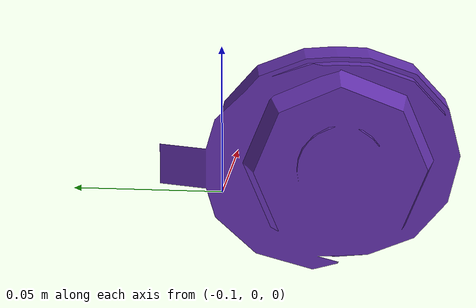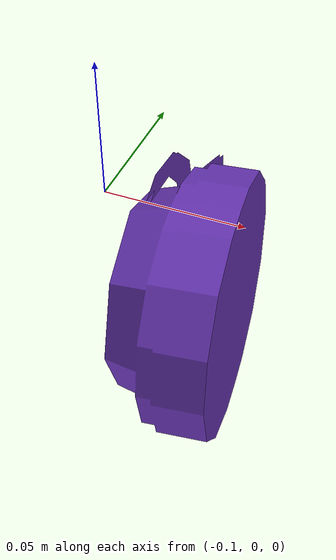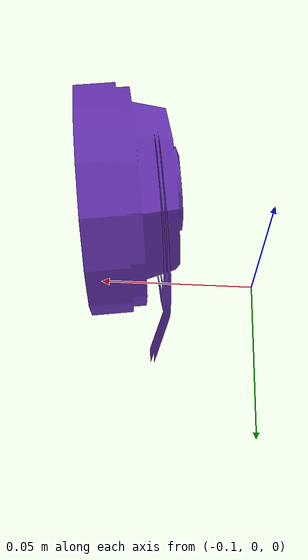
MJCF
<mujoco model="top_watertight_tiny">
  <default>
    <default group="2" type="mesh" contype="0" conaffinity="0">
      <geom group="2" type="mesh" contype="0" conaffinity="0"/>
    </default>
    <default group="3" type="mesh">
      <geom group="3" type="mesh"/>
    </default>
  </default>
  <asset>
    <mesh file="top_watertight_tiny.obj"/>
    <mesh file="top_watertight_tiny_collision_0.obj"/>
    <mesh file="top_watertight_tiny_collision_1.obj"/>
    <mesh file="top_watertight_tiny_collision_2.obj"/>
    <mesh file="top_watertight_tiny_collision_3.obj"/>
    <mesh file="top_watertight_tiny_collision_4.obj"/>
    <mesh file="top_watertight_tiny_collision_5.obj"/>
    <mesh file="top_watertight_tiny_collision_6.obj"/>
    <mesh file="top_watertight_tiny_collision_7.obj"/>
    <mesh file="top_watertight_tiny_collision_8.obj"/>
    <mesh file="top_watertight_tiny_collision_9.obj"/>
    <mesh file="top_watertight_tiny_collision_10.obj"/>
    <mesh file="top_watertight_tiny_collision_11.obj"/>
    <mesh file="top_watertight_tiny_collision_12.obj"/>
    <mesh file="top_watertight_tiny_collision_13.obj"/>
    <mesh file="top_watertight_tiny_collision_14.obj"/>
    <mesh file="top_watertight_tiny_collision_15.obj"/>
    <mesh file="top_watertight_tiny_collision_16.obj"/>
    <mesh file="top_watertight_tiny_collision_17.obj"/>
    <mesh file="top_watertight_tiny_collision_18.obj"/>
    <mesh file="top_watertight_tiny_collision_19.obj"/>
    <mesh file="top_watertight_tiny_collision_20.obj"/>
  </asset>
  <worldbody>
    <body name="top_watertight_tiny">
      <freejoint/>
      <geom mesh="top_watertight_tiny" group="2" type="mesh" rgba="0.4 0.2 0.7 1" contype="0" conaffinity="0"/>
      <geom mesh="top_watertight_tiny_collision_0" rgba="0.6472199659099711 0.21594104477422726 0.13272635894675489 1" group="3" type="mesh"/>
      <geom mesh="top_watertight_tiny_collision_1" rgba="0.4721111614059268 0.7713620039980755 0.171303747795014 1" group="3" type="mesh"/>
      <geom mesh="top_watertight_tiny_collision_2" rgba="0.6453872702557512 0.8993211887698829 0.10354855451492828 1" group="3" type="mesh"/>
      <geom mesh="top_watertight_tiny_collision_3" rgba="0.03106612428053135 0.3574856925734168 0.34506762038387395 1" group="3" type="mesh"/>
      <geom mesh="top_watertight_tiny_collision_4" rgba="0.07813476309519696 0.3339754077388408 0.1818491599786315 1" group="3" type="mesh"/>
      <geom mesh="top_watertight_tiny_collision_5" rgba="0.6060038787991114 0.13034077573921155 0.8032305136492208 1" group="3" type="mesh"/>
      <geom mesh="top_watertight_tiny_collision_6" rgba="0.4466935614391676 0.2509032502398596 0.6940677178069495 1" group="3" type="mesh"/>
      <geom mesh="top_watertight_tiny_collision_7" rgba="0.3212624801470356 0.30975652175118973 0.2913222341378977 1" group="3" type="mesh"/>
      <geom mesh="top_watertight_tiny_collision_8" rgba="0.09654408629163558 0.3458632706120379 0.9763881048495731 1" group="3" type="mesh"/>
      <geom mesh="top_watertight_tiny_collision_9" rgba="0.9988857353644328 0.28990643460517385 0.5019580709109236 1" group="3" type="mesh"/>
      <geom mesh="top_watertight_tiny_collision_10" rgba="0.5574783443968924 0.12257257595354387 0.1681927449995192 1" group="3" type="mesh"/>
      <geom mesh="top_watertight_tiny_collision_11" rgba="0.8119382231900317 0.43615588982135534 0.4689406545034861 1" group="3" type="mesh"/>
      <geom mesh="top_watertight_tiny_collision_12" rgba="0.6293937697873891 0.4743622586655655 0.19609538184323516 1" group="3" type="mesh"/>
      <geom mesh="top_watertight_tiny_collision_13" rgba="0.8370425331602341 0.9749446302877631 0.5714764304965235 1" group="3" type="mesh"/>
      <geom mesh="top_watertight_tiny_collision_14" rgba="0.4490361411984197 0.1676869624002817 0.020790187989828124 1" group="3" type="mesh"/>
      <geom mesh="top_watertight_tiny_collision_15" rgba="0.47210180432130855 0.6521187054526851 0.5756333212179207 1" group="3" type="mesh"/>
      <geom mesh="top_watertight_tiny_collision_16" rgba="0.08243790254571415 0.6453063121446411 0.29702374015037203 1" group="3" type="mesh"/>
      <geom mesh="top_watertight_tiny_collision_17" rgba="0.09378659512811849 0.14095296853147354 0.08307346341564958 1" group="3" type="mesh"/>
      <geom mesh="top_watertight_tiny_collision_18" rgba="0.2505170687981384 0.14637787647780887 0.7637119901691699 1" group="3" type="mesh"/>
      <geom mesh="top_watertight_tiny_collision_19" rgba="0.8966444910772808 0.1677420489128516 0.14953123595309703 1" group="3" type="mesh"/>
      <geom mesh="top_watertight_tiny_collision_20" rgba="0.4980319974288372 0.9297273273901621 0.9436532734198679 1" group="3" type="mesh"/>
    </body>
  </worldbody>
</mujoco>
